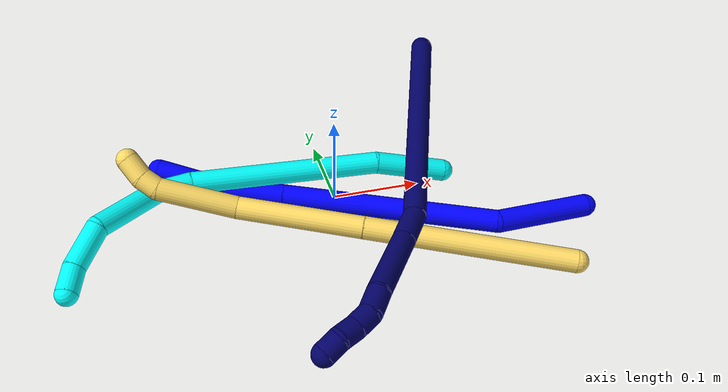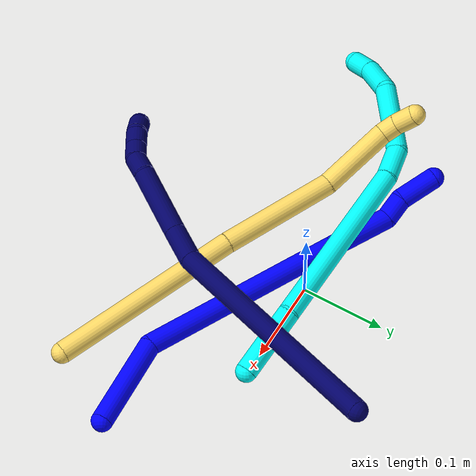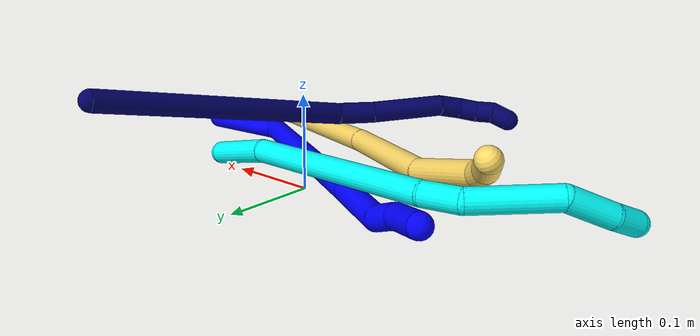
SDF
<sdf version="1.7">
 <world name="default">
  <model name="1">
   <static>0</static>
   <link name="1">
    <collision name="collision-cylinder-e_1_1_4">
     <pose>-0.022362 0.013182 -0.046416 -2.86489 -0.433988 2.01496</pose>
     <geometry><cylinder><radius>0.0125</radius><length>0.106363</length></cylinder></geometry>
     <surface>
      <friction><ode><mu>1.16</mu><mu2>1.16</mu2><slip1>0</slip1><slip2>0</slip2></ode></friction>
      <contact><ode><kp>1e+06</kp><kd>1</kd><max_vel>0</max_vel><min_depth>0.001</min_depth></ode></contact>
     </surface>
    </collision>
    <visual name="visual-cylinder-e_1_1_4">
     <pose>-0.022362 0.013182 -0.046416 -2.86489 -0.433988 2.01496</pose>
     <geometry><cylinder><radius>0.0125</radius><length>0.106363</length></cylinder></geometry>
     <material><ambient>0 0 1 1</ambient></material>
    </visual>
    <collision name="collision-cylinder-e_2_4_5">
     <pose>-0.142154 0.058589 -0.157604 -2.67992 -0.932076 2.26738</pose>
     <geometry><cylinder><radius>0.0125</radius><length>0.242704</length></cylinder></geometry>
     <surface>
      <friction><ode><mu>1.16</mu><mu2>1.16</mu2><slip1>0</slip1><slip2>0</slip2></ode></friction>
      <contact><ode><kp>1e+06</kp><kd>1</kd><max_vel>0</max_vel><min_depth>0.001</min_depth></ode></contact>
     </surface>
    </collision>
    <visual name="visual-cylinder-e_2_4_5">
     <pose>-0.142154 0.058589 -0.157604 -2.67992 -0.932076 2.26738</pose>
     <geometry><cylinder><radius>0.0125</radius><length>0.242704</length></cylinder></geometry>
     <material><ambient>0 0 1 1</ambient></material>
    </visual>
    <collision name="collision-cylinder-e_3_5_6">
     <pose>-0.270903 0.100968 -0.242415 -2.67261 -0.948621 2.27059</pose>
     <geometry><cylinder><radius>0.0125</radius><length>0.077088</length></cylinder></geometry>
     <surface>
      <friction><ode><mu>1.16</mu><mu2>1.16</mu2><slip1>0</slip1><slip2>0</slip2></ode></friction>
      <contact><ode><kp>1e+06</kp><kd>1</kd><max_vel>0</max_vel><min_depth>0.001</min_depth></ode></contact>
     </surface>
    </collision>
    <visual name="visual-cylinder-e_3_5_6">
     <pose>-0.270903 0.100968 -0.242415 -2.67261 -0.948621 2.27059</pose>
     <geometry><cylinder><radius>0.0125</radius><length>0.077088</length></cylinder></geometry>
     <material><ambient>0 0 1 1</ambient></material>
    </visual>
    <collision name="collision-cylinder-e_4_6_7">
     <pose>-0.310714 0.109721 -0.273283 3.01303 -0.660829 -2.77057</pose>
     <geometry><cylinder><radius>0.0125</radius><length>0.027664</length></cylinder></geometry>
     <surface>
      <friction><ode><mu>1.16</mu><mu2>1.16</mu2><slip1>0</slip1><slip2>0</slip2></ode></friction>
      <contact><ode><kp>1e+06</kp><kd>1</kd><max_vel>0</max_vel><min_depth>0.001</min_depth></ode></contact>
     </surface>
    </collision>
    <visual name="visual-cylinder-e_4_6_7">
     <pose>-0.310714 0.109721 -0.273283 3.01303 -0.660829 -2.77057</pose>
     <geometry><cylinder><radius>0.0125</radius><length>0.027664</length></cylinder></geometry>
     <material><ambient>0 0 1 1</ambient></material>
    </visual>
    <collision name="collision-cylinder-e_5_7_2">
     <pose>-0.338248 0.110109 -0.297048 -3.00424 -0.969758 2.88194</pose>
     <geometry><cylinder><radius>0.0125</radius><length>0.046182</length></cylinder></geometry>
     <surface>
      <friction><ode><mu>1.16</mu><mu2>1.16</mu2><slip1>0</slip1><slip2>0</slip2></ode></friction>
      <contact><ode><kp>1e+06</kp><kd>1</kd><max_vel>0</max_vel><min_depth>0.001</min_depth></ode></contact>
     </surface>
    </collision>
    <visual name="visual-cylinder-e_5_7_2">
     <pose>-0.338248 0.110109 -0.297048 -3.00424 -0.969758 2.88194</pose>
     <geometry><cylinder><radius>0.0125</radius><length>0.046182</length></cylinder></geometry>
     <material><ambient>0 0 1 1</ambient></material>
    </visual>
    <collision name="collision-sphere-2">
     <pose>-0.357292 0.111897 -0.309982 0 -0 0</pose>
     <geometry><sphere><radius>0.0125</radius></sphere></geometry>
     <surface>
      <friction><ode><mu>1.16</mu><mu2>1.16</mu2><slip1>0</slip1><slip2>0</slip2></ode></friction>
      <contact><ode><kp>1e+06</kp><kd>1</kd><max_vel>0</max_vel><min_depth>0.001</min_depth></ode></contact>
     </surface>
    </collision>
    <visual name="visual-sphere-2">
     <pose>-0.357292 0.111897 -0.309982 0 -0 0</pose>
     <geometry><sphere><radius>0.0125</radius></sphere></geometry>
     <material><ambient>0 0 1 1</ambient></material>
    </visual>
    <collision name="collision-sphere-7">
     <pose>-0.319204 0.108321 -0.284113 0 -0 0</pose>
     <geometry><sphere><radius>0.0125</radius></sphere></geometry>
     <surface>
      <friction><ode><mu>1.16</mu><mu2>1.16</mu2><slip1>0</slip1><slip2>0</slip2></ode></friction>
      <contact><ode><kp>1e+06</kp><kd>1</kd><max_vel>0</max_vel><min_depth>0.001</min_depth></ode></contact>
     </surface>
    </collision>
    <visual name="visual-sphere-7">
     <pose>-0.319204 0.108321 -0.284113 0 -0 0</pose>
     <geometry><sphere><radius>0.0125</radius></sphere></geometry>
     <material><ambient>0 0 1 1</ambient></material>
    </visual>
    <collision name="collision-sphere-6">
     <pose>-0.302225 0.111121 -0.262453 0 -0 0</pose>
     <geometry><sphere><radius>0.0125</radius></sphere></geometry>
     <surface>
      <friction><ode><mu>1.16</mu><mu2>1.16</mu2><slip1>0</slip1><slip2>0</slip2></ode></friction>
      <contact><ode><kp>1e+06</kp><kd>1</kd><max_vel>0</max_vel><min_depth>0.001</min_depth></ode></contact>
     </surface>
    </collision>
    <visual name="visual-sphere-6">
     <pose>-0.302225 0.111121 -0.262453 0 -0 0</pose>
     <geometry><sphere><radius>0.0125</radius></sphere></geometry>
     <material><ambient>0 0 1 1</ambient></material>
    </visual>
    <collision name="collision-sphere-5">
     <pose>-0.239582 0.090815 -0.222377 0 -0 0</pose>
     <geometry><sphere><radius>0.0125</radius></sphere></geometry>
     <surface>
      <friction><ode><mu>1.16</mu><mu2>1.16</mu2><slip1>0</slip1><slip2>0</slip2></ode></friction>
      <contact><ode><kp>1e+06</kp><kd>1</kd><max_vel>0</max_vel><min_depth>0.001</min_depth></ode></contact>
     </surface>
    </collision>
    <visual name="visual-sphere-5">
     <pose>-0.239582 0.090815 -0.222377 0 -0 0</pose>
     <geometry><sphere><radius>0.0125</radius></sphere></geometry>
     <material><ambient>0 0 1 1</ambient></material>
    </visual>
    <collision name="collision-sphere-1">
     <geometry><sphere><radius>0.0125</radius></sphere></geometry>
     <surface>
      <friction><ode><mu>1.16</mu><mu2>1.16</mu2><slip1>0</slip1><slip2>0</slip2></ode></friction>
      <contact><ode><kp>1e+06</kp><kd>1</kd><max_vel>0</max_vel><min_depth>0.001</min_depth></ode></contact>
     </surface>
    </collision>
    <visual name="visual-sphere-1">
     <geometry><sphere><radius>0.0125</radius></sphere></geometry>
     <material><ambient>0 0 1 1</ambient></material>
    </visual>
    <collision name="collision-sphere-4">
     <pose>-0.044725 0.026363 -0.092832 0 -0 0</pose>
     <geometry><sphere><radius>0.0125</radius></sphere></geometry>
     <surface>
      <friction><ode><mu>1.16</mu><mu2>1.16</mu2><slip1>0</slip1><slip2>0</slip2></ode></friction>
      <contact><ode><kp>1e+06</kp><kd>1</kd><max_vel>0</max_vel><min_depth>0.001</min_depth></ode></contact>
     </surface>
    </collision>
    <visual name="visual-sphere-4">
     <pose>-0.044725 0.026363 -0.092832 0 -0 0</pose>
     <geometry><sphere><radius>0.0125</radius></sphere></geometry>
     <material><ambient>0 0 1 1</ambient></material>
    </visual>
    <inertial>
     <pose>-0.163959 0.063051 -0.166307 0 -0 0</pose>
     <mass>0.5</mass>
     <inertia>
      <ixx>0.000103</ixx>
      <ixy>0</ixy>
      <ixz>0</ixz>
      <iyy>0.001783</iyy>
      <iyz>0</iyz>
      <izz>0.000671</izz>
     </inertia>
    </inertial>
   </link>
   <pose>0.264453 -0.103057 0.012493 -1.79643 0.159171 -1.08568</pose>
  </model>
  <model name="3">
   <static>0</static>
   <link name="3">
    <collision name="collision-cylinder-e_1_1_4">
     <pose>-0.035544 0.001654 0.020373 -0.08103 -1.04892 0.046893</pose>
     <geometry><cylinder><radius>0.0125</radius><length>0.082005</length></cylinder></geometry>
     <surface>
      <friction><ode><mu>1.16</mu><mu2>1.16</mu2><slip1>0</slip1><slip2>0</slip2></ode></friction>
      <contact><ode><kp>1e+06</kp><kd>1</kd><max_vel>0</max_vel><min_depth>0.001</min_depth></ode></contact>
     </surface>
    </collision>
    <visual name="visual-cylinder-e_1_1_4">
     <pose>-0.035544 0.001654 0.020373 -0.08103 -1.04892 0.046893</pose>
     <geometry><cylinder><radius>0.0125</radius><length>0.082005</length></cylinder></geometry>
     <material><ambient>0.003922 1 0.996078 1</ambient></material>
    </visual>
    <collision name="collision-cylinder-e_2_4_5">
     <pose>-0.171732 -0.005191 0.075095 0.242589 -1.23271 -0.172275</pose>
     <geometry><cylinder><radius>0.0125</radius><length>0.213364</length></cylinder></geometry>
     <surface>
      <friction><ode><mu>1.16</mu><mu2>1.16</mu2><slip1>0</slip1><slip2>0</slip2></ode></friction>
      <contact><ode><kp>1e+06</kp><kd>1</kd><max_vel>0</max_vel><min_depth>0.001</min_depth></ode></contact>
     </surface>
    </collision>
    <visual name="visual-cylinder-e_2_4_5">
     <pose>-0.171732 -0.005191 0.075095 0.242589 -1.23271 -0.172275</pose>
     <geometry><cylinder><radius>0.0125</radius><length>0.213364</length></cylinder></geometry>
     <material><ambient>0.003922 1 0.996078 1</ambient></material>
    </visual>
    <collision name="collision-cylinder-e_3_5_6">
     <pose>-0.289789 -0.019485 0.116359 0.697386 -1.09279 -0.43519</pose>
     <geometry><cylinder><radius>0.0125</radius><length>0.039225</length></cylinder></geometry>
     <surface>
      <friction><ode><mu>1.16</mu><mu2>1.16</mu2><slip1>0</slip1><slip2>0</slip2></ode></friction>
      <contact><ode><kp>1e+06</kp><kd>1</kd><max_vel>0</max_vel><min_depth>0.001</min_depth></ode></contact>
     </surface>
    </collision>
    <visual name="visual-cylinder-e_3_5_6">
     <pose>-0.289789 -0.019485 0.116359 0.697386 -1.09279 -0.43519</pose>
     <geometry><cylinder><radius>0.0125</radius><length>0.039225</length></cylinder></geometry>
     <material><ambient>0.003922 1 0.996078 1</ambient></material>
    </visual>
    <collision name="collision-cylinder-e_4_6_7">
     <pose>-0.33348 -0.053903 0.141582 1.00178 -0.658301 -0.369726</pose>
     <geometry><cylinder><radius>0.0125</radius><length>0.085906</length></cylinder></geometry>
     <surface>
      <friction><ode><mu>1.16</mu><mu2>1.16</mu2><slip1>0</slip1><slip2>0</slip2></ode></friction>
      <contact><ode><kp>1e+06</kp><kd>1</kd><max_vel>0</max_vel><min_depth>0.001</min_depth></ode></contact>
     </surface>
    </collision>
    <visual name="visual-cylinder-e_4_6_7">
     <pose>-0.33348 -0.053903 0.141582 1.00178 -0.658301 -0.369726</pose>
     <geometry><cylinder><radius>0.0125</radius><length>0.085906</length></cylinder></geometry>
     <material><ambient>0.003922 1 0.996078 1</ambient></material>
    </visual>
    <collision name="collision-cylinder-e_5_7_8">
     <pose>-0.372505 -0.103727 0.158859 1.61933 -0.540809 -0.56633</pose>
     <geometry><cylinder><radius>0.0125</radius><length>0.049518</length></cylinder></geometry>
     <surface>
      <friction><ode><mu>1.16</mu><mu2>1.16</mu2><slip1>0</slip1><slip2>0</slip2></ode></friction>
      <contact><ode><kp>1e+06</kp><kd>1</kd><max_vel>0</max_vel><min_depth>0.001</min_depth></ode></contact>
     </surface>
    </collision>
    <visual name="visual-cylinder-e_5_7_8">
     <pose>-0.372505 -0.103727 0.158859 1.61933 -0.540809 -0.56633</pose>
     <geometry><cylinder><radius>0.0125</radius><length>0.049518</length></cylinder></geometry>
     <material><ambient>0.003922 1 0.996078 1</ambient></material>
    </visual>
    <collision name="collision-cylinder-e_6_8_2">
     <pose>-0.389347 -0.13931 0.156781 1.64357 -0.276706 -0.297318</pose>
     <geometry><cylinder><radius>0.0125</radius><length>0.029982</length></cylinder></geometry>
     <surface>
      <friction><ode><mu>1.16</mu><mu2>1.16</mu2><slip1>0</slip1><slip2>0</slip2></ode></friction>
      <contact><ode><kp>1e+06</kp><kd>1</kd><max_vel>0</max_vel><min_depth>0.001</min_depth></ode></contact>
     </surface>
    </collision>
    <visual name="visual-cylinder-e_6_8_2">
     <pose>-0.389347 -0.13931 0.156781 1.64357 -0.276706 -0.297318</pose>
     <geometry><cylinder><radius>0.0125</radius><length>0.029982</length></cylinder></geometry>
     <material><ambient>0.003922 1 0.996078 1</ambient></material>
    </visual>
    <collision name="collision-sphere-2">
     <pose>-0.393442 -0.153692 0.155732 0 -0 0</pose>
     <geometry><sphere><radius>0.0125</radius></sphere></geometry>
     <surface>
      <friction><ode><mu>1.16</mu><mu2>1.16</mu2><slip1>0</slip1><slip2>0</slip2></ode></friction>
      <contact><ode><kp>1e+06</kp><kd>1</kd><max_vel>0</max_vel><min_depth>0.001</min_depth></ode></contact>
     </surface>
    </collision>
    <visual name="visual-sphere-2">
     <pose>-0.393442 -0.153692 0.155732 0 -0 0</pose>
     <geometry><sphere><radius>0.0125</radius></sphere></geometry>
     <material><ambient>0.003922 1 0.996078 1</ambient></material>
    </visual>
    <collision name="collision-sphere-4">
     <pose>-0.071089 0.003309 0.040746 0 -0 0</pose>
     <geometry><sphere><radius>0.0125</radius></sphere></geometry>
     <surface>
      <friction><ode><mu>1.16</mu><mu2>1.16</mu2><slip1>0</slip1><slip2>0</slip2></ode></friction>
      <contact><ode><kp>1e+06</kp><kd>1</kd><max_vel>0</max_vel><min_depth>0.001</min_depth></ode></contact>
     </surface>
    </collision>
    <visual name="visual-sphere-4">
     <pose>-0.071089 0.003309 0.040746 0 -0 0</pose>
     <geometry><sphere><radius>0.0125</radius></sphere></geometry>
     <material><ambient>0.003922 1 0.996078 1</ambient></material>
    </visual>
    <collision name="collision-sphere-1">
     <geometry><sphere><radius>0.0125</radius></sphere></geometry>
     <surface>
      <friction><ode><mu>1.16</mu><mu2>1.16</mu2><slip1>0</slip1><slip2>0</slip2></ode></friction>
      <contact><ode><kp>1e+06</kp><kd>1</kd><max_vel>0</max_vel><min_depth>0.001</min_depth></ode></contact>
     </surface>
    </collision>
    <visual name="visual-sphere-1">
     <geometry><sphere><radius>0.0125</radius></sphere></geometry>
     <material><ambient>0.003922 1 0.996078 1</ambient></material>
    </visual>
    <collision name="collision-sphere-8">
     <pose>-0.385251 -0.124927 0.15783 0 -0 0</pose>
     <geometry><sphere><radius>0.0125</radius></sphere></geometry>
     <surface>
      <friction><ode><mu>1.16</mu><mu2>1.16</mu2><slip1>0</slip1><slip2>0</slip2></ode></friction>
      <contact><ode><kp>1e+06</kp><kd>1</kd><max_vel>0</max_vel><min_depth>0.001</min_depth></ode></contact>
     </surface>
    </collision>
    <visual name="visual-sphere-8">
     <pose>-0.385251 -0.124927 0.15783 0 -0 0</pose>
     <geometry><sphere><radius>0.0125</radius></sphere></geometry>
     <material><ambient>0.003922 1 0.996078 1</ambient></material>
    </visual>
    <collision name="collision-sphere-5">
     <pose>-0.272375 -0.013691 0.109444 0 -0 0</pose>
     <geometry><sphere><radius>0.0125</radius></sphere></geometry>
     <surface>
      <friction><ode><mu>1.16</mu><mu2>1.16</mu2><slip1>0</slip1><slip2>0</slip2></ode></friction>
      <contact><ode><kp>1e+06</kp><kd>1</kd><max_vel>0</max_vel><min_depth>0.001</min_depth></ode></contact>
     </surface>
    </collision>
    <visual name="visual-sphere-5">
     <pose>-0.272375 -0.013691 0.109444 0 -0 0</pose>
     <geometry><sphere><radius>0.0125</radius></sphere></geometry>
     <material><ambient>0.003922 1 0.996078 1</ambient></material>
    </visual>
    <collision name="collision-sphere-6">
     <pose>-0.307203 -0.025279 0.123275 0 -0 0</pose>
     <geometry><sphere><radius>0.0125</radius></sphere></geometry>
     <surface>
      <friction><ode><mu>1.16</mu><mu2>1.16</mu2><slip1>0</slip1><slip2>0</slip2></ode></friction>
      <contact><ode><kp>1e+06</kp><kd>1</kd><max_vel>0</max_vel><min_depth>0.001</min_depth></ode></contact>
     </surface>
    </collision>
    <visual name="visual-sphere-6">
     <pose>-0.307203 -0.025279 0.123275 0 -0 0</pose>
     <geometry><sphere><radius>0.0125</radius></sphere></geometry>
     <material><ambient>0.003922 1 0.996078 1</ambient></material>
    </visual>
    <collision name="collision-sphere-7">
     <pose>-0.359758 -0.082526 0.159889 0 -0 0</pose>
     <geometry><sphere><radius>0.0125</radius></sphere></geometry>
     <surface>
      <friction><ode><mu>1.16</mu><mu2>1.16</mu2><slip1>0</slip1><slip2>0</slip2></ode></friction>
      <contact><ode><kp>1e+06</kp><kd>1</kd><max_vel>0</max_vel><min_depth>0.001</min_depth></ode></contact>
     </surface>
    </collision>
    <visual name="visual-sphere-7">
     <pose>-0.359758 -0.082526 0.159889 0 -0 0</pose>
     <geometry><sphere><radius>0.0125</radius></sphere></geometry>
     <material><ambient>0.003922 1 0.996078 1</ambient></material>
    </visual>
    <inertial>
     <pose>-0.21938 -0.03136 0.093974 0 -0 0</pose>
     <mass>0.5</mass>
     <inertia>
      <ixx>0.000248</ixx>
      <ixy>0</ixy>
      <ixz>0</ixz>
      <iyy>0.000829</iyy>
      <iyz>0</iyz>
      <izz>0.00099</izz>
     </inertia>
    </inertial>
   </link>
   <pose>0.131466 0.001203 0.013249 0.270068 -0.273043 -0.198391</pose>
  </model>
  <model name="5">
   <static>0</static>
   <link name="5">
    <collision name="collision-cylinder-e_1_1_4">
     <pose>-0.10387 0.041677 0.018956 -1.14394 -1.15562 0.794838</pose>
     <geometry><cylinder><radius>0.0125</radius><length>0.227027</length></cylinder></geometry>
     <surface>
      <friction><ode><mu>1.16</mu><mu2>1.16</mu2><slip1>0</slip1><slip2>0</slip2></ode></friction>
      <contact><ode><kp>1e+06</kp><kd>1</kd><max_vel>0</max_vel><min_depth>0.001</min_depth></ode></contact>
     </surface>
    </collision>
    <visual name="visual-cylinder-e_1_1_4">
     <pose>-0.10387 0.041677 0.018956 -1.14394 -1.15562 0.794838</pose>
     <geometry><cylinder><radius>0.0125</radius><length>0.227027</length></cylinder></geometry>
     <material><ambient>1 0.858824 0.4 1</ambient></material>
    </visual>
    <collision name="collision-cylinder-e_2_4_5">
     <pose>-0.26996 0.112476 0.04931 -1.19771 -1.10507 0.796616</pose>
     <geometry><cylinder><radius>0.0125</radius><length>0.139275</length></cylinder></geometry>
     <surface>
      <friction><ode><mu>1.16</mu><mu2>1.16</mu2><slip1>0</slip1><slip2>0</slip2></ode></friction>
      <contact><ode><kp>1e+06</kp><kd>1</kd><max_vel>0</max_vel><min_depth>0.001</min_depth></ode></contact>
     </surface>
    </collision>
    <visual name="visual-cylinder-e_2_4_5">
     <pose>-0.26996 0.112476 0.04931 -1.19771 -1.10507 0.796616</pose>
     <geometry><cylinder><radius>0.0125</radius><length>0.139275</length></cylinder></geometry>
     <material><ambient>1 0.858824 0.4 1</ambient></material>
    </visual>
    <collision name="collision-cylinder-e_3_5_6">
     <pose>-0.374024 0.15034 0.071611 -0.675934 -1.24845 0.495887</pose>
     <geometry><cylinder><radius>0.0125</radius><length>0.088229</length></cylinder></geometry>
     <surface>
      <friction><ode><mu>1.16</mu><mu2>1.16</mu2><slip1>0</slip1><slip2>0</slip2></ode></friction>
      <contact><ode><kp>1e+06</kp><kd>1</kd><max_vel>0</max_vel><min_depth>0.001</min_depth></ode></contact>
     </surface>
    </collision>
    <visual name="visual-cylinder-e_3_5_6">
     <pose>-0.374024 0.15034 0.071611 -0.675934 -1.24845 0.495887</pose>
     <geometry><cylinder><radius>0.0125</radius><length>0.088229</length></cylinder></geometry>
     <material><ambient>1 0.858824 0.4 1</ambient></material>
    </visual>
    <collision name="collision-cylinder-e_4_6_7">
     <pose>-0.423791 0.161556 0.088323 -0.402386 -0.898052 0.195921</pose>
     <geometry><cylinder><radius>0.0125</radius><length>0.020266</length></cylinder></geometry>
     <surface>
      <friction><ode><mu>1.16</mu><mu2>1.16</mu2><slip1>0</slip1><slip2>0</slip2></ode></friction>
      <contact><ode><kp>1e+06</kp><kd>1</kd><max_vel>0</max_vel><min_depth>0.001</min_depth></ode></contact>
     </surface>
    </collision>
    <visual name="visual-cylinder-e_4_6_7">
     <pose>-0.423791 0.161556 0.088323 -0.402386 -0.898052 0.195921</pose>
     <geometry><cylinder><radius>0.0125</radius><length>0.020266</length></cylinder></geometry>
     <material><ambient>1 0.858824 0.4 1</ambient></material>
    </visual>
    <collision name="collision-cylinder-e_5_7_2">
     <pose>-0.438836 0.167043 0.104084 -0.294197 -0.600402 0.091669</pose>
     <geometry><cylinder><radius>0.0125</radius><length>0.025204</length></cylinder></geometry>
     <surface>
      <friction><ode><mu>1.16</mu><mu2>1.16</mu2><slip1>0</slip1><slip2>0</slip2></ode></friction>
      <contact><ode><kp>1e+06</kp><kd>1</kd><max_vel>0</max_vel><min_depth>0.001</min_depth></ode></contact>
     </surface>
    </collision>
    <visual name="visual-cylinder-e_5_7_2">
     <pose>-0.438836 0.167043 0.104084 -0.294197 -0.600402 0.091669</pose>
     <geometry><cylinder><radius>0.0125</radius><length>0.025204</length></cylinder></geometry>
     <material><ambient>1 0.858824 0.4 1</ambient></material>
    </visual>
    <collision name="collision-sphere-2">
     <pose>-0.445956 0.170058 0.114035 0 -0 0</pose>
     <geometry><sphere><radius>0.0125</radius></sphere></geometry>
     <surface>
      <friction><ode><mu>1.16</mu><mu2>1.16</mu2><slip1>0</slip1><slip2>0</slip2></ode></friction>
      <contact><ode><kp>1e+06</kp><kd>1</kd><max_vel>0</max_vel><min_depth>0.001</min_depth></ode></contact>
     </surface>
    </collision>
    <visual name="visual-sphere-2">
     <pose>-0.445956 0.170058 0.114035 0 -0 0</pose>
     <geometry><sphere><radius>0.0125</radius></sphere></geometry>
     <material><ambient>1 0.858824 0.4 1</ambient></material>
    </visual>
    <collision name="collision-sphere-7">
     <pose>-0.431716 0.164028 0.094133 0 -0 0</pose>
     <geometry><sphere><radius>0.0125</radius></sphere></geometry>
     <surface>
      <friction><ode><mu>1.16</mu><mu2>1.16</mu2><slip1>0</slip1><slip2>0</slip2></ode></friction>
      <contact><ode><kp>1e+06</kp><kd>1</kd><max_vel>0</max_vel><min_depth>0.001</min_depth></ode></contact>
     </surface>
    </collision>
    <visual name="visual-sphere-7">
     <pose>-0.431716 0.164028 0.094133 0 -0 0</pose>
     <geometry><sphere><radius>0.0125</radius></sphere></geometry>
     <material><ambient>1 0.858824 0.4 1</ambient></material>
    </visual>
    <collision name="collision-sphere-6">
     <pose>-0.415866 0.159083 0.082513 0 -0 0</pose>
     <geometry><sphere><radius>0.0125</radius></sphere></geometry>
     <surface>
      <friction><ode><mu>1.16</mu><mu2>1.16</mu2><slip1>0</slip1><slip2>0</slip2></ode></friction>
      <contact><ode><kp>1e+06</kp><kd>1</kd><max_vel>0</max_vel><min_depth>0.001</min_depth></ode></contact>
     </surface>
    </collision>
    <visual name="visual-sphere-6">
     <pose>-0.415866 0.159083 0.082513 0 -0 0</pose>
     <geometry><sphere><radius>0.0125</radius></sphere></geometry>
     <material><ambient>1 0.858824 0.4 1</ambient></material>
    </visual>
    <collision name="collision-sphere-5">
     <pose>-0.332181 0.141596 0.060709 0 -0 0</pose>
     <geometry><sphere><radius>0.0125</radius></sphere></geometry>
     <surface>
      <friction><ode><mu>1.16</mu><mu2>1.16</mu2><slip1>0</slip1><slip2>0</slip2></ode></friction>
      <contact><ode><kp>1e+06</kp><kd>1</kd><max_vel>0</max_vel><min_depth>0.001</min_depth></ode></contact>
     </surface>
    </collision>
    <visual name="visual-sphere-5">
     <pose>-0.332181 0.141596 0.060709 0 -0 0</pose>
     <geometry><sphere><radius>0.0125</radius></sphere></geometry>
     <material><ambient>1 0.858824 0.4 1</ambient></material>
    </visual>
    <collision name="collision-sphere-1">
     <geometry><sphere><radius>0.0125</radius></sphere></geometry>
     <surface>
      <friction><ode><mu>1.16</mu><mu2>1.16</mu2><slip1>0</slip1><slip2>0</slip2></ode></friction>
      <contact><ode><kp>1e+06</kp><kd>1</kd><max_vel>0</max_vel><min_depth>0.001</min_depth></ode></contact>
     </surface>
    </collision>
    <visual name="visual-sphere-1">
     <geometry><sphere><radius>0.0125</radius></sphere></geometry>
     <material><ambient>1 0.858824 0.4 1</ambient></material>
    </visual>
    <collision name="collision-sphere-4">
     <pose>-0.20774 0.083355 0.037912 0 -0 0</pose>
     <geometry><sphere><radius>0.0125</radius></sphere></geometry>
     <surface>
      <friction><ode><mu>1.16</mu><mu2>1.16</mu2><slip1>0</slip1><slip2>0</slip2></ode></friction>
      <contact><ode><kp>1e+06</kp><kd>1</kd><max_vel>0</max_vel><min_depth>0.001</min_depth></ode></contact>
     </surface>
    </collision>
    <visual name="visual-sphere-4">
     <pose>-0.20774 0.083355 0.037912 0 -0 0</pose>
     <geometry><sphere><radius>0.0125</radius></sphere></geometry>
     <material><ambient>1 0.858824 0.4 1</ambient></material>
    </visual>
    <inertial>
     <pose>-0.227657 0.091751 0.043805 0 -0 0</pose>
     <mass>0.5</mass>
     <inertia>
      <ixx>0.000702</ixx>
      <ixy>0</ixy>
      <ixz>0</ixz>
      <iyy>0.001509</iyy>
      <iyz>0</iyz>
      <izz>0.000705</izz>
     </inertia>
    </inertial>
   </link>
   <pose>0.214751 -0.188092 0.011481 -0.60759 0.166624 0.002534</pose>
  </model>
  <model name="7">
   <static>0</static>
   <link name="7">
    <collision name="collision-cylinder-e_1_1_4">
     <pose>-0.002604 -0.027552 -0.139642 2.94679 -0.018289 -0.186643</pose>
     <geometry><cylinder><radius>0.0125</radius><length>0.284717</length></cylinder></geometry>
     <surface>
      <friction><ode><mu>1.16</mu><mu2>1.16</mu2><slip1>0</slip1><slip2>0</slip2></ode></friction>
      <contact><ode><kp>1e+06</kp><kd>1</kd><max_vel>0</max_vel><min_depth>0.001</min_depth></ode></contact>
     </surface>
    </collision>
    <visual name="visual-cylinder-e_1_1_4">
     <pose>-0.002604 -0.027552 -0.139642 2.94679 -0.018289 -0.186643</pose>
     <geometry><cylinder><radius>0.0125</radius><length>0.284717</length></cylinder></geometry>
     <material><ambient>0.003922 0 0.403922 1</ambient></material>
    </visual>
    <collision name="collision-cylinder-e_2_4_5">
     <pose>-0.005973 -0.064732 -0.297938 2.66509 -0.03646 -0.149864</pose>
     <geometry><cylinder><radius>0.0125</radius><length>0.042011</length></cylinder></geometry>
     <surface>
      <friction><ode><mu>1.16</mu><mu2>1.16</mu2><slip1>0</slip1><slip2>0</slip2></ode></friction>
      <contact><ode><kp>1e+06</kp><kd>1</kd><max_vel>0</max_vel><min_depth>0.001</min_depth></ode></contact>
     </surface>
    </collision>
    <visual name="visual-cylinder-e_2_4_5">
     <pose>-0.005973 -0.064732 -0.297938 2.66509 -0.03646 -0.149864</pose>
     <geometry><cylinder><radius>0.0125</radius><length>0.042011</length></cylinder></geometry>
     <material><ambient>0.003922 0 0.403922 1</ambient></material>
    </visual>
    <collision name="collision-cylinder-e_3_5_6">
     <pose>-0.006038 -0.095354 -0.353797 2.62787 0.016402 0.062427</pose>
     <geometry><cylinder><radius>0.0125</radius><length>0.085452</length></cylinder></geometry>
     <surface>
      <friction><ode><mu>1.16</mu><mu2>1.16</mu2><slip1>0</slip1><slip2>0</slip2></ode></friction>
      <contact><ode><kp>1e+06</kp><kd>1</kd><max_vel>0</max_vel><min_depth>0.001</min_depth></ode></contact>
     </surface>
    </collision>
    <visual name="visual-cylinder-e_3_5_6">
     <pose>-0.006038 -0.095354 -0.353797 2.62787 0.016402 0.062427</pose>
     <geometry><cylinder><radius>0.0125</radius><length>0.085452</length></cylinder></geometry>
     <material><ambient>0.003922 0 0.403922 1</ambient></material>
    </visual>
    <collision name="collision-cylinder-e_4_6_7">
     <pose>-0.007711 -0.121379 -0.402871 2.74059 -0.18215 -0.844665</pose>
     <geometry><cylinder><radius>0.0125</radius><length>0.026215</length></cylinder></geometry>
     <surface>
      <friction><ode><mu>1.16</mu><mu2>1.16</mu2><slip1>0</slip1><slip2>0</slip2></ode></friction>
      <contact><ode><kp>1e+06</kp><kd>1</kd><max_vel>0</max_vel><min_depth>0.001</min_depth></ode></contact>
     </surface>
    </collision>
    <visual name="visual-cylinder-e_4_6_7">
     <pose>-0.007711 -0.121379 -0.402871 2.74059 -0.18215 -0.844665</pose>
     <geometry><cylinder><radius>0.0125</radius><length>0.026215</length></cylinder></geometry>
     <material><ambient>0.003922 0 0.403922 1</ambient></material>
    </visual>
    <collision name="collision-cylinder-e_5_7_8">
     <pose>-0.014029 -0.13315 -0.421987 2.39259 -0.37914 -0.908269</pose>
     <geometry><cylinder><radius>0.0125</radius><length>0.021307</length></cylinder></geometry>
     <surface>
      <friction><ode><mu>1.16</mu><mu2>1.16</mu2><slip1>0</slip1><slip2>0</slip2></ode></friction>
      <contact><ode><kp>1e+06</kp><kd>1</kd><max_vel>0</max_vel><min_depth>0.001</min_depth></ode></contact>
     </surface>
    </collision>
    <visual name="visual-cylinder-e_5_7_8">
     <pose>-0.014029 -0.13315 -0.421987 2.39259 -0.37914 -0.908269</pose>
     <geometry><cylinder><radius>0.0125</radius><length>0.021307</length></cylinder></geometry>
     <material><ambient>0.003922 0 0.403922 1</ambient></material>
    </visual>
    <collision name="collision-cylinder-e_6_8_9">
     <pose>-0.020769 -0.147278 -0.435419 2.26759 -0.28254 -0.591079</pose>
     <geometry><cylinder><radius>0.0125</radius><length>0.020065</length></cylinder></geometry>
     <surface>
      <friction><ode><mu>1.16</mu><mu2>1.16</mu2><slip1>0</slip1><slip2>0</slip2></ode></friction>
      <contact><ode><kp>1e+06</kp><kd>1</kd><max_vel>0</max_vel><min_depth>0.001</min_depth></ode></contact>
     </surface>
    </collision>
    <visual name="visual-cylinder-e_6_8_9">
     <pose>-0.020769 -0.147278 -0.435419 2.26759 -0.28254 -0.591079</pose>
     <geometry><cylinder><radius>0.0125</radius><length>0.020065</length></cylinder></geometry>
     <material><ambient>0.003922 0 0.403922 1</ambient></material>
    </visual>
    <collision name="collision-cylinder-e_7_9_2">
     <pose>-0.029774 -0.159959 -0.447584 2.41727 -0.66071 -1.47126</pose>
     <geometry><cylinder><radius>0.0125</radius><length>0.020234</length></cylinder></geometry>
     <surface>
      <friction><ode><mu>1.16</mu><mu2>1.16</mu2><slip1>0</slip1><slip2>0</slip2></ode></friction>
      <contact><ode><kp>1e+06</kp><kd>1</kd><max_vel>0</max_vel><min_depth>0.001</min_depth></ode></contact>
     </surface>
    </collision>
    <visual name="visual-cylinder-e_7_9_2">
     <pose>-0.029774 -0.159959 -0.447584 2.41727 -0.66071 -1.47126</pose>
     <geometry><cylinder><radius>0.0125</radius><length>0.020234</length></cylinder></geometry>
     <material><ambient>0.003922 0 0.403922 1</ambient></material>
    </visual>
    <collision name="collision-sphere-2">
     <pose>-0.035983 -0.165252 -0.453567 0 -0 0</pose>
     <geometry><sphere><radius>0.0125</radius></sphere></geometry>
     <surface>
      <friction><ode><mu>1.16</mu><mu2>1.16</mu2><slip1>0</slip1><slip2>0</slip2></ode></friction>
      <contact><ode><kp>1e+06</kp><kd>1</kd><max_vel>0</max_vel><min_depth>0.001</min_depth></ode></contact>
     </surface>
    </collision>
    <visual name="visual-sphere-2">
     <pose>-0.035983 -0.165252 -0.453567 0 -0 0</pose>
     <geometry><sphere><radius>0.0125</radius></sphere></geometry>
     <material><ambient>0.003922 0 0.403922 1</ambient></material>
    </visual>
    <collision name="collision-sphere-9">
     <pose>-0.023566 -0.154666 -0.441602 0 -0 0</pose>
     <geometry><sphere><radius>0.0125</radius></sphere></geometry>
     <surface>
      <friction><ode><mu>1.16</mu><mu2>1.16</mu2><slip1>0</slip1><slip2>0</slip2></ode></friction>
      <contact><ode><kp>1e+06</kp><kd>1</kd><max_vel>0</max_vel><min_depth>0.001</min_depth></ode></contact>
     </surface>
    </collision>
    <visual name="visual-sphere-9">
     <pose>-0.023566 -0.154666 -0.441602 0 -0 0</pose>
     <geometry><sphere><radius>0.0125</radius></sphere></geometry>
     <material><ambient>0.003922 0 0.403922 1</ambient></material>
    </visual>
    <collision name="collision-sphere-4">
     <pose>-0.005207 -0.055104 -0.279285 0 -0 0</pose>
     <geometry><sphere><radius>0.0125</radius></sphere></geometry>
     <surface>
      <friction><ode><mu>1.16</mu><mu2>1.16</mu2><slip1>0</slip1><slip2>0</slip2></ode></friction>
      <contact><ode><kp>1e+06</kp><kd>1</kd><max_vel>0</max_vel><min_depth>0.001</min_depth></ode></contact>
     </surface>
    </collision>
    <visual name="visual-sphere-4">
     <pose>-0.005207 -0.055104 -0.279285 0 -0 0</pose>
     <geometry><sphere><radius>0.0125</radius></sphere></geometry>
     <material><ambient>0.003922 0 0.403922 1</ambient></material>
    </visual>
    <collision name="collision-sphere-1">
     <geometry><sphere><radius>0.0125</radius></sphere></geometry>
     <surface>
      <friction><ode><mu>1.16</mu><mu2>1.16</mu2><slip1>0</slip1><slip2>0</slip2></ode></friction>
      <contact><ode><kp>1e+06</kp><kd>1</kd><max_vel>0</max_vel><min_depth>0.001</min_depth></ode></contact>
     </surface>
    </collision>
    <visual name="visual-sphere-1">
     <geometry><sphere><radius>0.0125</radius></sphere></geometry>
     <material><ambient>0.003922 0 0.403922 1</ambient></material>
    </visual>
    <collision name="collision-sphere-8">
     <pose>-0.017972 -0.139889 -0.429236 0 -0 0</pose>
     <geometry><sphere><radius>0.0125</radius></sphere></geometry>
     <surface>
      <friction><ode><mu>1.16</mu><mu2>1.16</mu2><slip1>0</slip1><slip2>0</slip2></ode></friction>
      <contact><ode><kp>1e+06</kp><kd>1</kd><max_vel>0</max_vel><min_depth>0.001</min_depth></ode></contact>
     </surface>
    </collision>
    <visual name="visual-sphere-8">
     <pose>-0.017972 -0.139889 -0.429236 0 -0 0</pose>
     <geometry><sphere><radius>0.0125</radius></sphere></geometry>
     <material><ambient>0.003922 0 0.403922 1</ambient></material>
    </visual>
    <collision name="collision-sphere-5">
     <pose>-0.006738 -0.07436 -0.316591 0 -0 0</pose>
     <geometry><sphere><radius>0.0125</radius></sphere></geometry>
     <surface>
      <friction><ode><mu>1.16</mu><mu2>1.16</mu2><slip1>0</slip1><slip2>0</slip2></ode></friction>
      <contact><ode><kp>1e+06</kp><kd>1</kd><max_vel>0</max_vel><min_depth>0.001</min_depth></ode></contact>
     </surface>
    </collision>
    <visual name="visual-sphere-5">
     <pose>-0.006738 -0.07436 -0.316591 0 -0 0</pose>
     <geometry><sphere><radius>0.0125</radius></sphere></geometry>
     <material><ambient>0.003922 0 0.403922 1</ambient></material>
    </visual>
    <collision name="collision-sphere-6">
     <pose>-0.005337 -0.116347 -0.391003 0 -0 0</pose>
     <geometry><sphere><radius>0.0125</radius></sphere></geometry>
     <surface>
      <friction><ode><mu>1.16</mu><mu2>1.16</mu2><slip1>0</slip1><slip2>0</slip2></ode></friction>
      <contact><ode><kp>1e+06</kp><kd>1</kd><max_vel>0</max_vel><min_depth>0.001</min_depth></ode></contact>
     </surface>
    </collision>
    <visual name="visual-sphere-6">
     <pose>-0.005337 -0.116347 -0.391003 0 -0 0</pose>
     <geometry><sphere><radius>0.0125</radius></sphere></geometry>
     <material><ambient>0.003922 0 0.403922 1</ambient></material>
    </visual>
    <collision name="collision-sphere-7">
     <pose>-0.010086 -0.126411 -0.414739 0 -0 0</pose>
     <geometry><sphere><radius>0.0125</radius></sphere></geometry>
     <surface>
      <friction><ode><mu>1.16</mu><mu2>1.16</mu2><slip1>0</slip1><slip2>0</slip2></ode></friction>
      <contact><ode><kp>1e+06</kp><kd>1</kd><max_vel>0</max_vel><min_depth>0.001</min_depth></ode></contact>
     </surface>
    </collision>
    <visual name="visual-sphere-7">
     <pose>-0.010086 -0.126411 -0.414739 0 -0 0</pose>
     <geometry><sphere><radius>0.0125</radius></sphere></geometry>
     <material><ambient>0.003922 0 0.403922 1</ambient></material>
    </visual>
    <inertial>
     <pose>-0.006057 -0.061845 -0.239707 0 -0 0</pose>
     <mass>0.5</mass>
     <inertia>
      <ixx>0.001603</ixx>
      <ixy>0</ixy>
      <ixz>0</ixz>
      <iyy>-0.002295</iyy>
      <iyz>0</iyz>
      <izz>0.000411</izz>
     </inertia>
    </inertial>
   </link>
   <pose>0.151786 0.148466 0.096274 -1.10451 -0.98386 -0.560761</pose>
  </model>
 </world>
</sdf>
